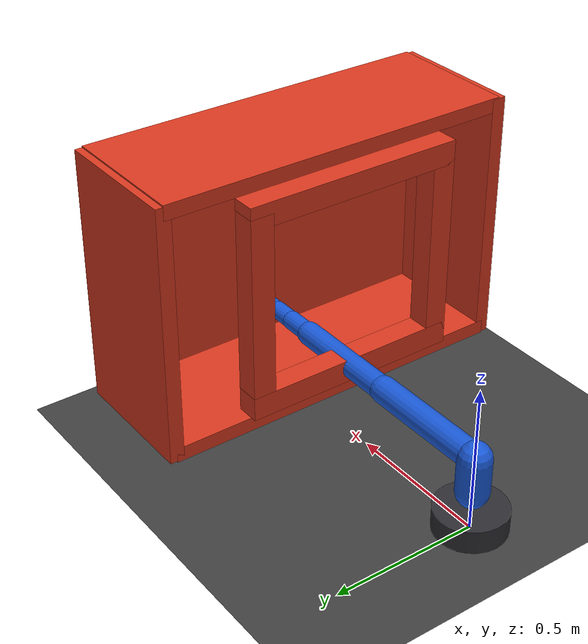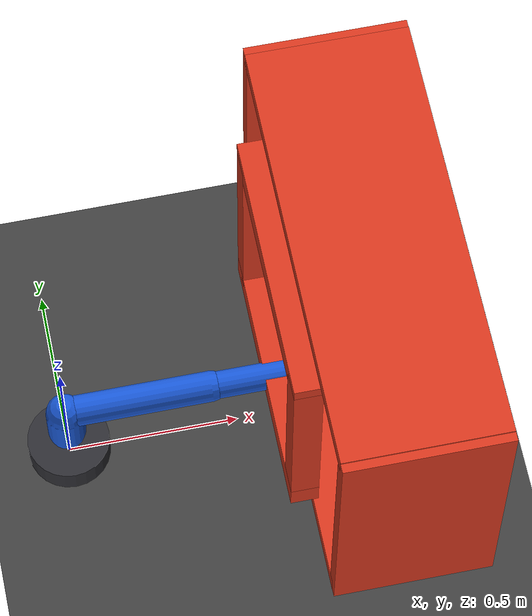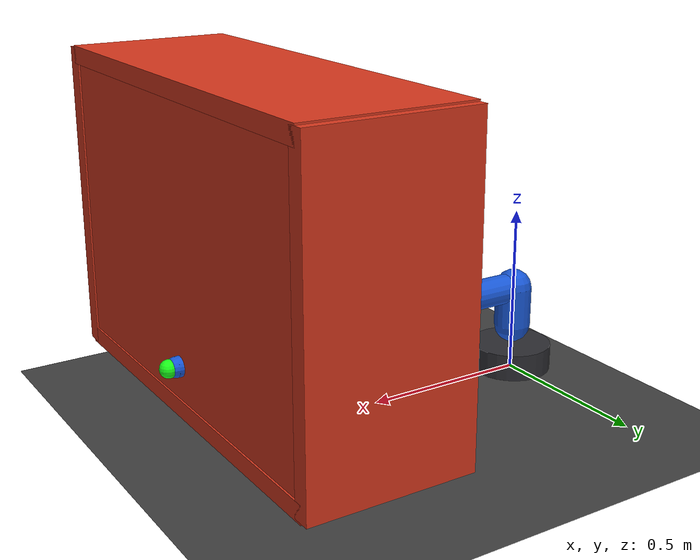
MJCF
<mujoco model="ur5_clutter">
  <compiler angle="radian" autolimits="true"/>
  <option timestep="0.002" gravity="0 0 0" integrator="implicitfast"/>

  <default>
    <joint limited="true" damping="5" armature="0.03"/>
    <geom friction="0.8 0.1 0.1"/>
    <default class="robot">
      <geom type="capsule" size="0.035" density="850" contype="1" conaffinity="2" rgba="0.10 0.35 0.85 1"/>
    </default>
    <default class="obstacle">
      <geom type="box" contype="2" conaffinity="1" rgba="0.85 0.22 0.12 1"/>
    </default>
  </default>

  <worldbody>
    <geom name="floor" type="plane" size="1.5 1.5 0.02" contype="0" conaffinity="0" rgba="0.25 0.25 0.25 1"/>

    <body name="shelf_back" pos="1.08 0 0.56">
      <geom name="shelf_back_geom" class="obstacle" size="0.025 0.62 0.44"/>
    </body>
    <body name="shelf_left" pos="0.88 -0.62 0.56">
      <geom name="shelf_left_geom" class="obstacle" size="0.23 0.025 0.44"/>
    </body>
    <body name="shelf_right" pos="0.88 0.62 0.56">
      <geom name="shelf_right_geom" class="obstacle" size="0.23 0.025 0.44"/>
    </body>
    <body name="shelf_bottom" pos="0.88 0 0.14">
      <geom name="shelf_bottom_geom" class="obstacle" size="0.23 0.62 0.025"/>
    </body>
    <body name="shelf_top" pos="0.88 0 0.98">
      <geom name="shelf_top_geom" class="obstacle" size="0.23 0.62 0.025"/>
    </body>

    <body name="needle_ring" pos="0.62 0 0.58">
      <geom name="ring_left_bar" class="obstacle" pos="0 -0.34 0" size="0.04 0.04 0.33"/>
      <geom name="ring_right_bar" class="obstacle" pos="0 0.34 0" size="0.04 0.04 0.33"/>
      <geom name="ring_top_bar" class="obstacle" pos="0 0 0.33" size="0.04 0.38 0.04"/>
      <geom name="ring_bottom_bar" class="obstacle" pos="0 0 -0.33" size="0.04 0.38 0.04"/>
    </body>

    <body name="base" pos="0 0 0.04">
      <geom name="base_geom" type="cylinder" size="0.12 0.04" contype="0" conaffinity="0" rgba="0.18 0.18 0.20 1"/>

      <body name="shoulder_pan_link" pos="0 0 0.10">
        <joint name="shoulder_pan" axis="0 0 1" range="-3.14159 3.14159"/>
        <geom name="shoulder_pan_geom" class="robot" fromto="0 0 0 0 0 0.12" size="0.055"/>

        <body name="shoulder_lift_link" pos="0 0 0.12">
          <joint name="shoulder_lift" axis="0 1 0" range="-2.5 2.5"/>
          <geom name="upper_arm_geom" class="robot" fromto="0 0 0 0.425 0 0" size="0.045"/>

          <body name="elbow_link" pos="0.425 0 0">
            <joint name="elbow" axis="0 1 0" range="-2.8 2.8"/>
            <geom name="forearm_geom" class="robot" fromto="0 0 0 0.392 0 0" size="0.04"/>

            <body name="wrist_1_link" pos="0.392 0 0">
              <joint name="wrist_1" axis="0 1 0" range="-3.14159 3.14159"/>
              <geom name="wrist_1_geom" class="robot" fromto="0 0 0 0.10 0 0" size="0.032"/>

              <body name="wrist_2_link" pos="0.10 0 0">
                <joint name="wrist_2" axis="0 0 1" range="-3.14159 3.14159"/>
                <geom name="wrist_2_geom" class="robot" fromto="0 0 0 0.08 0 0" size="0.03"/>

                <body name="wrist_3_link" pos="0.08 0 0">
                  <joint name="wrist_3" axis="0 1 0" range="-3.14159 3.14159"/>
                  <geom name="wrist_3_geom" class="robot" fromto="0 0 0 0.12 0 0" size="0.028"/>
                  <site name="tool0" pos="0.14 0 0" size="0.025" rgba="0.1 1 0.1 1"/>
                </body>
              </body>
            </body>
          </body>
        </body>
      </body>
    </body>
  </worldbody>

  <actuator>
    <motor name="shoulder_pan_motor" joint="shoulder_pan" gear="1" ctrllimited="true" ctrlrange="-200 200"/>
    <motor name="shoulder_lift_motor" joint="shoulder_lift" gear="1" ctrllimited="true" ctrlrange="-200 200"/>
    <motor name="elbow_motor" joint="elbow" gear="1" ctrllimited="true" ctrlrange="-160 160"/>
    <motor name="wrist_1_motor" joint="wrist_1" gear="1" ctrllimited="true" ctrlrange="-80 80"/>
    <motor name="wrist_2_motor" joint="wrist_2" gear="1" ctrllimited="true" ctrlrange="-80 80"/>
    <motor name="wrist_3_motor" joint="wrist_3" gear="1" ctrllimited="true" ctrlrange="-80 80"/>
  </actuator>
</mujoco>
